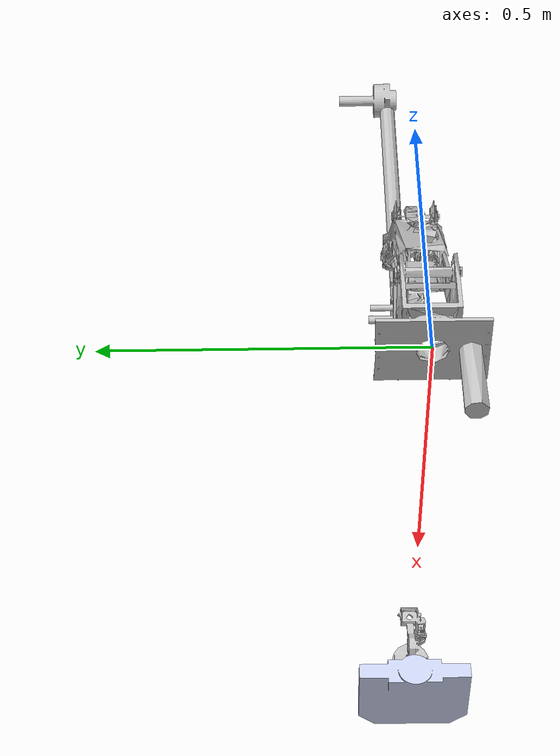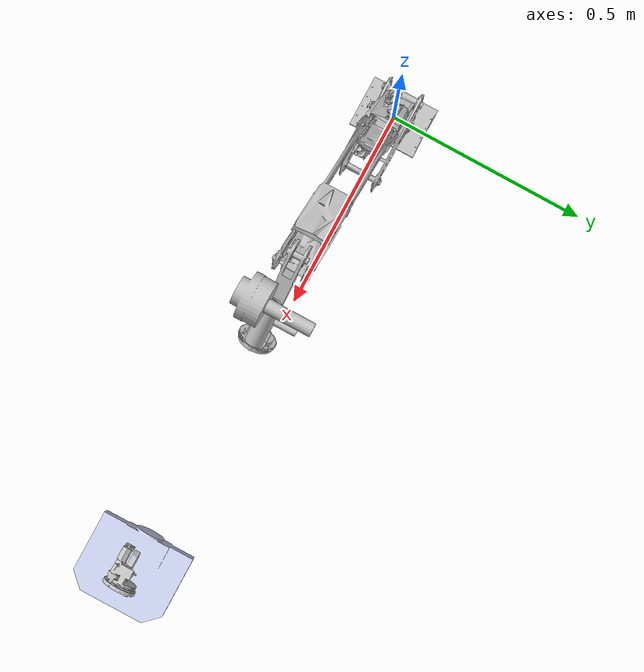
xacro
<?xml version="1.0"?>
<robot xmlns:xacro="http://www.ros.org/wiki/xacro" name="arm_urdf">
    <xacro:arg name="initial_positions_file" default="initial_positions.yaml" />

    <!-- Import arm_urdf urdf file -->
    <xacro:include filename="$(find arm_urdf)/urdf/rover_urdf.urdf" />

    <!-- Import control_xacro -->
    <xacro:include filename="arm_urdf.ros2_control.xacro" />

    <xacro:arm_urdf_ros2_control name="FakeSystem" initial_positions_file="$(arg initial_positions_file)"/>

</robot>

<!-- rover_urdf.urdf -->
<robot
  name="arm_urdf">
  <link
    name="Link_1">
    <inertial>
      <origin
        xyz="0.00622341511954164 -0.00916820792441791 -0.0469349641137912"
        rpy="0 0 0" />
      <mass
        value="3.33097898163857" />
      <inertia
        ixx="0.0101819650222787"
        ixy="-1.98734712904888E-07"
        ixz="-8.66271809934504E-05"
        iyy="0.00358872310944578"
        iyz="-2.39587965010669E-06"
        izz="0.00949532820710057" />
    </inertial>
    <visual>
      <origin
        xyz="0 0 0"
        rpy="0 0 0" />
      <geometry>
        <mesh
          filename="package://arm_urdf/meshes/visual/Link_1.STL" />
      </geometry>
      <material
        name="">
        <color
          rgba="0.752941176470588 0.752941176470588 0.752941176470588 1" />
      </material>
    </visual>
    <collision>
      <origin
        xyz="0 0 0"
        rpy="0 0 0" />
      <geometry>
        <mesh
          filename="package://arm_urdf/meshes/collision/Link_1.STL" />
      </geometry>
    </collision>
  </link>
  <link
    name="Link_2">
    <inertial>
      <origin
        xyz="0.060972336777117 -1.36723296035798E-05 0.0647576977642935"
        rpy="0 0 0" />
      <mass
        value="0.516253747755485" />
      <inertia
        ixx="0.000613480594305293"
        ixy="5.38160003974242E-19"
        ixz="-0.000275510697436789"
        iyy="0.0023924326610652"
        iyz="2.3245534780382E-20"
        izz="0.00218490294968333" />
    </inertial>
    <visual>
      <origin
        xyz="0 0 0"
        rpy="0 0 0" />
      <geometry>
        <mesh
          filename="package://arm_urdf/meshes/visual/Link_2.STL" />
      </geometry>
      <material
        name="">
        <color
          rgba="0.752941176470588 0.752941176470588 0.752941176470588 1" />
      </material>
    </visual>
    <collision>
      <origin
        xyz="0 0 0"
        rpy="0 0 0" />
      <geometry>
        <mesh
          filename="package://arm_urdf/meshes/collision/Link_2.STL" />
      </geometry>
    </collision>
  </link>
  <joint
    name="Joint_1"
    type="continuous">
    <origin
      xyz="0 0 0.027113"
      rpy="0 0 0" />
    <parent
      link="Link_1" />
    <child
      link="Link_2" />
    <axis
      xyz="0 0 1" />
  </joint>
  <link
    name="Link_3">
    <inertial>
      <origin
        xyz="0.248052997344685 -2.92185847471094E-06 0.265955531896042"
        rpy="0 0 0" />
      <mass
        value="1.93524935633317" />
      <inertia
        ixx="0.0382135022216721"
        ixy="-4.49867345730304E-16"
        ixz="-0.0451188810097449"
        iyy="0.099274210856537"
        iyz="-3.34175860324251E-16"
        izz="0.0611945626947677" />
    </inertial>
    <visual>
      <origin
        xyz="0 0 0"
        rpy="0 0 0" />
      <geometry>
        <mesh
          filename="package://arm_urdf/meshes/visual/Link_3.STL" />
      </geometry>
      <material
        name="">
        <color
          rgba="0.752941176470588 0.752941176470588 0.752941176470588 1" />
      </material>
    </visual>
    <collision>
      <origin
        xyz="0 0 0"
        rpy="0 0 0" />
      <geometry>
        <mesh
          filename="package://arm_urdf/meshes/collision/Link_3.STL" />
      </geometry>
    </collision>
  </link>
  <joint
    name="Joint_2"
    type="continuous">
    <origin
      xyz="0 0 0.1"
      rpy="0 0 0" />
    <parent
      link="Link_2" />
    <child
      link="Link_3" />
    <axis
      xyz="0 -1 0" />
  </joint>
  <link
    name="Link_4">
    <inertial>
      <origin
        xyz="-0.0241622970765439 -0.000145725953688065 0.0139342486656481"
        rpy="0 0 0" />
      <mass
        value="0.798545293139664" />
      <inertia
        ixx="0.000725346582901255"
        ixy="-9.25632625871902E-07"
        ixz="0.000642244287450308"
        iyy="0.00182700177776413"
        iyz="5.34067929115977E-07"
        izz="0.00146510835419295" />
    </inertial>
    <visual>
      <origin
        xyz="0 0 0"
        rpy="0 0 0" />
      <geometry>
        <mesh
          filename="package://arm_urdf/meshes/visual/Link_4.STL" />
      </geometry>
      <material
        name="">
        <color
          rgba="0.752941176470588 0.752941176470588 0.752941176470588 1" />
      </material>
    </visual>
    <collision>
      <origin
        xyz="0 0 0"
        rpy="0 0 0" />
      <geometry>
        <mesh
          filename="package://arm_urdf/meshes/collision/Link_4.STL" />
      </geometry>
    </collision>
  </link>
  <joint
    name="Joint_3"
    type="continuous">
    <origin
      xyz="0.55801 0 0.46651"
      rpy="0 0 0" />
    <parent
      link="Link_3" />
    <child
      link="Link_4" />
    <axis
      xyz="0 -1 0" />
  </joint>
  <link
    name="Link_5">
    <inertial>
      <origin
        xyz="0.54652151239787 0.0045965233223425 -0.315526632247381"
        rpy="0 0 0" />
      <mass
        value="1.41995187784121" />
      <inertia
        ixx="0.00275531148319508"
        ixy="6.91162703332479E-08"
        ixz="0.00393052302354834"
        iyy="0.00983380816136502"
        iyz="-1.19451574736834E-08"
        izz="0.00729337097705166" />
    </inertial>
    <visual>
      <origin
        xyz="0 0 0"
        rpy="0 0 0" />
      <geometry>
        <mesh
          filename="package://arm_urdf/meshes/visual/Link_5.STL" />
      </geometry>
      <material
        name="">
        <color
          rgba="0.752941176470588 0.752941176470588 0.752941176470588 1" />
      </material>
    </visual>
    <collision>
      <origin
        xyz="0 0 0"
        rpy="0 0 0" />
      <geometry>
        <mesh
          filename="package://arm_urdf/meshes/collision/Link_5.STL" />
      </geometry>
    </collision>
  </link>
  <joint
    name="Joint_4"
    type="continuous">
    <origin
      xyz="-0.020934 -0.00015536 0.012086"
      rpy="0 0 0" />
    <parent
      link="Link_4" />
    <child
      link="Link_5" />
    <axis
      xyz="-0.86603 0 0.5" />
  </joint>
  <link
    name="Link_6">
    <inertial>
      <origin
        xyz="-0.00885742110815235 -0.0330787531924534 -0.0330128346122342"
        rpy="0 0 0" />
      <mass
        value="0.462055180258125" />
      <inertia
        ixx="0.000186526424548505"
        ixy="1.01051408727741E-06"
        ixz="4.85716237256025E-05"
        iyy="0.000186429229057267"
        iyz="-5.92211171029459E-07"
        izz="0.000242741841550989" />
    </inertial>
    <visual>
      <origin
        xyz="0 0 0"
        rpy="0 0 0" />
      <geometry>
        <mesh
          filename="package://arm_urdf/meshes/visual/Link_6.STL" />
      </geometry>
      <material
        name="">
        <color
          rgba="0.752941176470588 0.752941176470588 0.752941176470588 1" />
      </material>
    </visual>
    <collision>
      <origin
        xyz="0 0 0"
        rpy="0 0 0" />
      <geometry>
        <mesh
          filename="package://arm_urdf/meshes/collision/Link_6.STL" />
      </geometry>
    </collision>
  </link>
  <joint
    name="Joint_5"
    type="continuous">
    <origin
      xyz="0.63746 0 -0.36804"
      rpy="0 0 0" />
    <parent
      link="Link_5" />
    <child
      link="Link_6" />
    <axis
      xyz="0 -1 0" />
  </joint>
  <link
    name="Link_7">
    <inertial>
      <origin
        xyz="-0.0202239496006344 2.28289609438548E-15 -0.0350289082380117"
        rpy="0 0 0" />
      <mass
        value="1.47639025500324" />
      <inertia
        ixx="0.00879392218461711"
        ixy="1.12722455111749E-17"
        ixz="-0.00170541271279087"
        iyy="0.00431422034842634"
        iyz="-7.58974100183454E-18"
        izz="0.00682468120699871" />
    </inertial>
    <visual>
      <origin
        xyz="0 0 0"
        rpy="0 0 0" />
      <geometry>
        <mesh
          filename="package://arm_urdf/meshes/visual/Link_7.STL" />
      </geometry>
      <material
        name="">
        <color
          rgba="0.792156862745098 0.819607843137255 0.933333333333333 1" />
      </material>
    </visual>
    <collision>
      <origin
        xyz="0 0 0"
        rpy="0 0 0" />
      <geometry>
        <mesh
          filename="package://arm_urdf/meshes/collision/Link_7.STL" />
      </geometry>
    </collision>
  </link>
  <joint
    name="Joint_6"
    type="continuous">
    <origin
      xyz="-0.05445 -0.028588 -0.09431"
      rpy="0 0 0" />
    <parent
      link="Link_6" />
    <child
      link="Link_7" />
    <axis
      xyz="0.5 0 0.86603" />
  </joint>
</robot>
